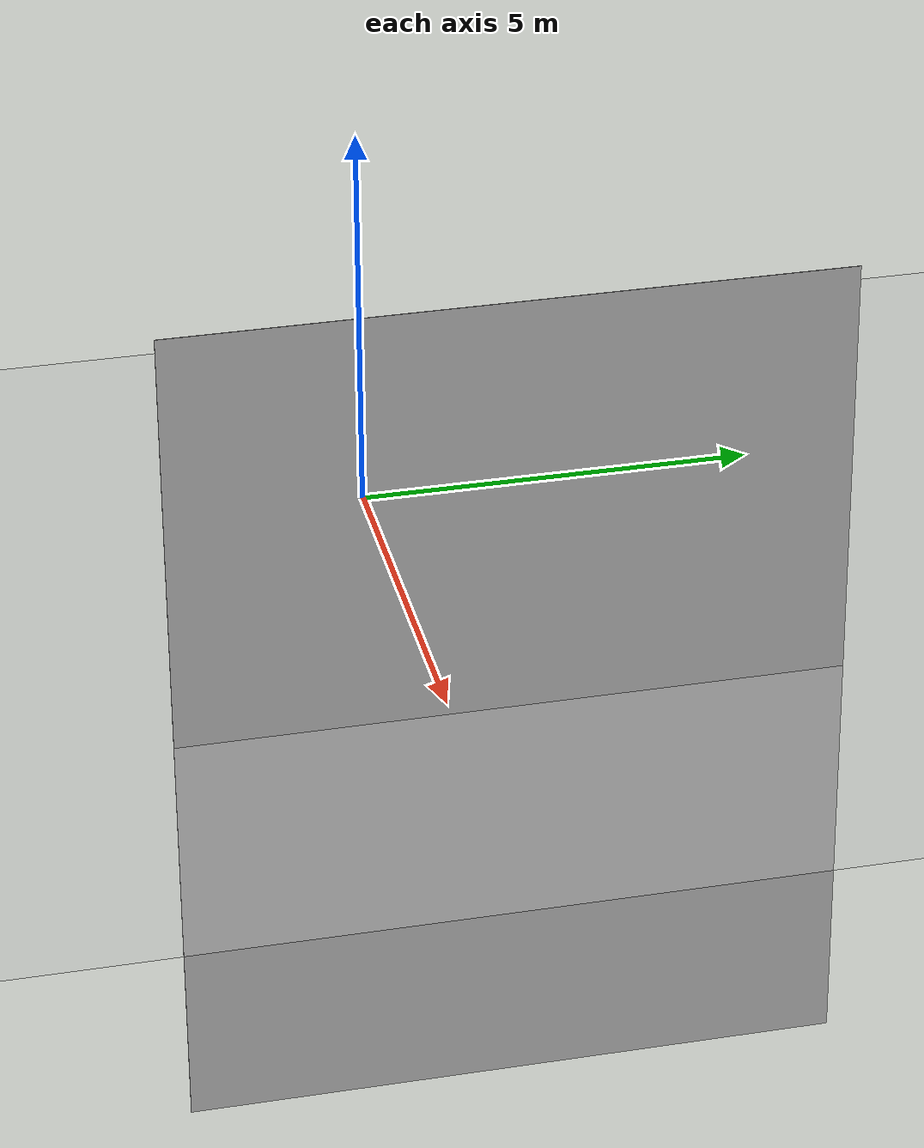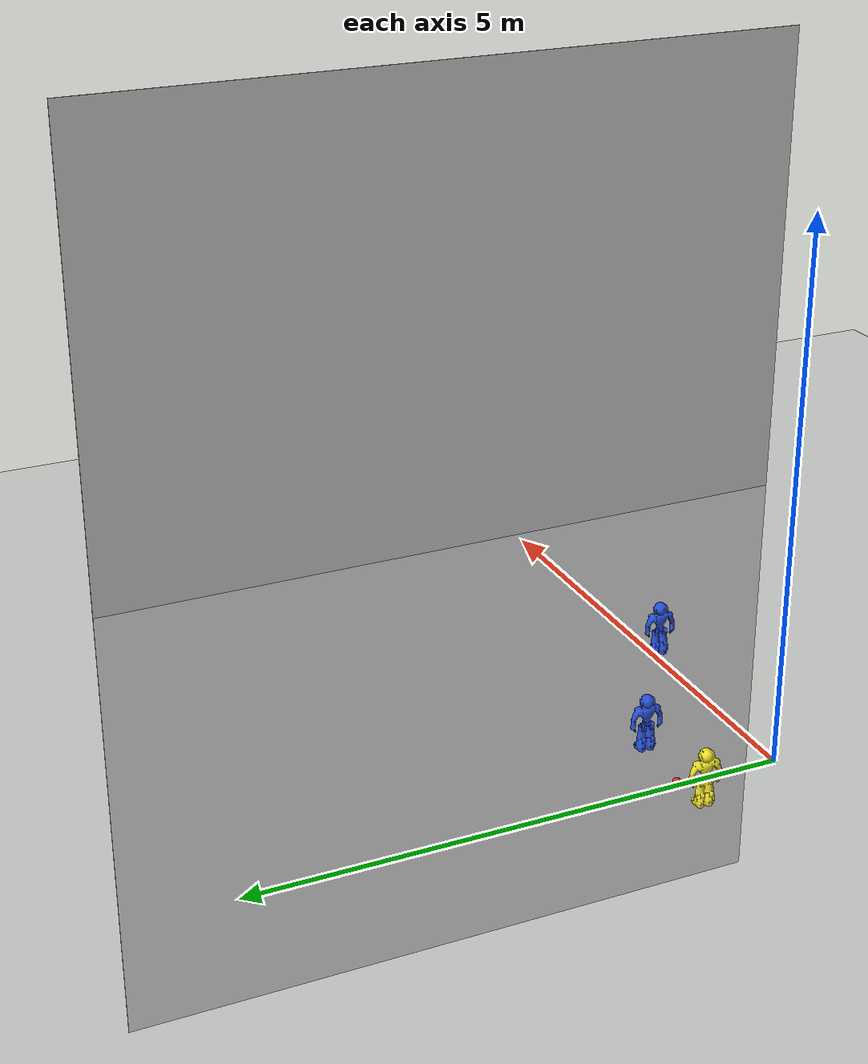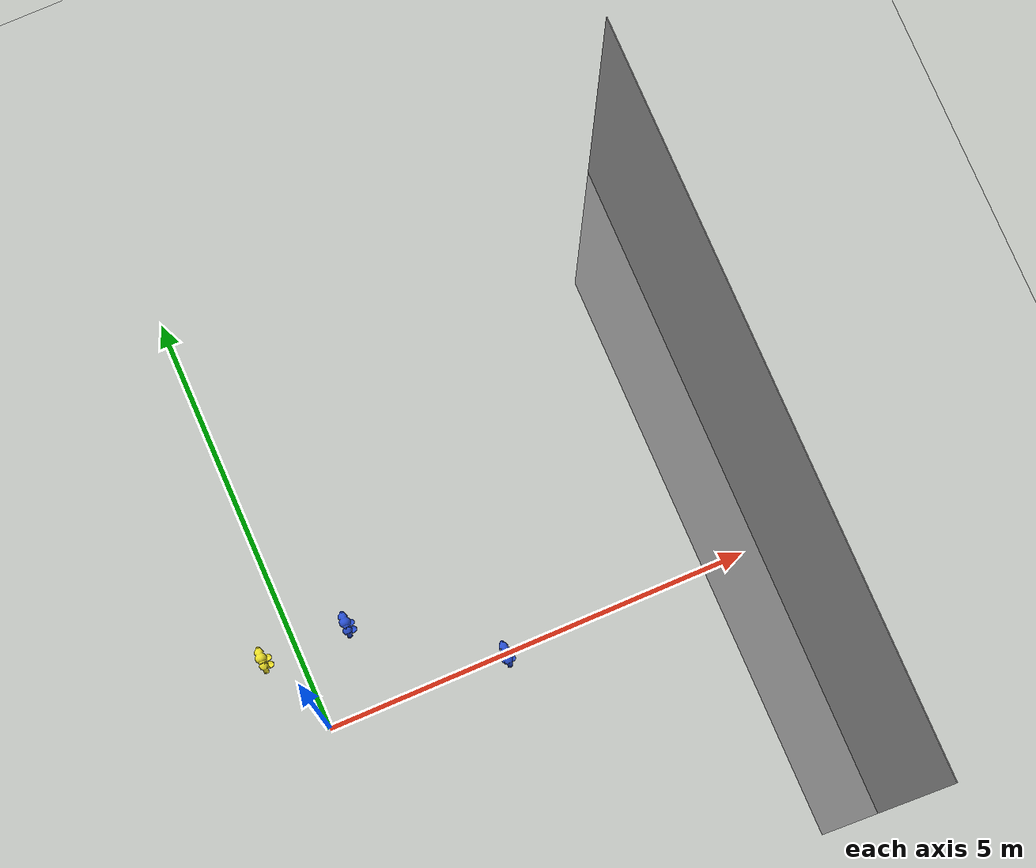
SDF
<sdf version="1.6">
 <world name="default">
  <model name="ground_plane">
   <static>1</static>
   <link name="link">
    <collision name="collision">
     <geometry><plane><normal>0 0 1</normal><size>100 100</size></plane></geometry>
     <surface><friction><ode><mu>100</mu><mu2>50</mu2></ode></friction></surface>
    </collision>
    <visual name="visual">
     <cast_shadows>0</cast_shadows>
     <geometry><plane><normal>0 0 1</normal><size>100 100</size></plane></geometry>
     <material>
      <script><uri>file://media/materials/scripts/gazebo.material</uri><name>Gazebo/Grey</name></script>
     </material>
    </visual>
    <velocity_decay><linear>0</linear><angular>0</angular></velocity_decay>
   </link>
  </model>
  <model name="foot_ball">
   <link name="link">
    <pose>0 0 0.0375 0 -0 0</pose>
    <inertial>
     <mass>0.3</mass>
     <inertia><ixx>0.0012</ixx><ixy>0</ixy><ixz>0</ixz><iyy>0.0012</iyy><iyz>0</iyz><izz>0.0012</izz></inertia>
    </inertial>
    <collision name="collision">
     <geometry><sphere><radius>0.037</radius></sphere></geometry>
     <surface>
      <bounce><restitution_coefficient>1</restitution_coefficient><threshold>0</threshold></bounce>
      <friction><ode><mu>0.3</mu><mu2>0.3</mu2></ode></friction>
     </surface>
    </collision>
    <visual name="visual">
     <geometry><sphere><radius>0.037</radius></sphere></geometry>
     <material>
      <script><uri>file://media/materials/scripts/gazebo.material</uri><name>Gazebo/Red</name></script>
     </material>
    </visual>
    <velocity_decay><linear>0.00025</linear><angular>0.00025</angular></velocity_decay>
   </link>
   <pose>0 1 0.01 0 -0 0</pose>
   <static>0</static>
  </model>
  <model name="unit_box_1">
   <model name="wall-1">
    <link name="link_2">
     <inertial>
      <mass>1</mass>
      <inertia>
       <ixx>0.166667</ixx>
       <ixy>0</ixy>
       <ixz>0</ixz>
       <iyy>0.166667</iyy>
       <iyz>0</iyz>
       <izz>0.166667</izz>
      </inertia>
     </inertial>
     <pose>-0 1e-06 0 0 -0 0</pose>
     <visual name="visual">
      <geometry><box><size>9 0.1 2</size></box></geometry>
      <material>
       <lighting>1</lighting>
       <script><uri>file://media/materials/scripts/gazebo.material</uri><name>Gazebo/Grey</name></script>
       <shader type="vertex"><normal_map>__default__</normal_map></shader>
       <ambient>0.3 0.3 0.3 1</ambient>
       <diffuse>0.7 0.7 0.7 1</diffuse>
       <specular>0.01 0.01 0.01 1</specular>
       <emissive>0 0 0 1</emissive>
      </material>
      <transparency>1</transparency>
     </visual>
     <collision name="collision">
      <geometry><box><size>9 0.1 2</size></box></geometry>
      <surface>
       <friction>
        <ode><mu>1</mu><mu2>1</mu2><fdir1>0 0 0</fdir1><slip1>0</slip1><slip2>0</slip2></ode>
        <torsional>
         <coefficient>1</coefficient>
         <patch_radius>0</patch_radius>
         <surface_radius>0</surface_radius>
         <use_patch_radius>1</use_patch_radius>
         <ode><slip>0</slip></ode>
        </torsional>
       </friction>
       <bounce><restitution_coefficient>0</restitution_coefficient><threshold>1e+06</threshold></bounce>
       <contact>
        <collide_without_contact>0</collide_without_contact>
        <collide_without_contact_bitmask>1</collide_without_contact_bitmask>
        <collide_bitmask>1</collide_bitmask>
        <ode>
         <soft_cfm>0</soft_cfm>
         <soft_erp>0.2</soft_erp>
         <kp>1e+13</kp>
         <kd>1</kd>
         <max_vel>0.01</max_vel>
         <min_depth>0</min_depth>
        </ode>
        <bullet>
         <split_impulse>1</split_impulse>
         <split_impulse_penetration_threshold>-0.01</split_impulse_penetration_threshold>
         <soft_cfm>0</soft_cfm>
         <soft_erp>0.2</soft_erp>
         <kp>1e+13</kp>
         <kd>1</kd>
        </bullet>
       </contact>
      </surface>
     </collision>
    </link>
    <static>1</static>
    <pose>3.98426 -0.483842 0 0 -0 0</pose>
   </model>
   <static>1</static>
   <pose>4.09999 -3 0 0 -0 1.5707</pose>
  </model>
  <model name="nao16">
   <model name="nao_body">
    <link name="link_0">
     <inertial>
      <mass>15</mass>
      <inertia><ixx>0</ixx><ixy>0</ixy><ixz>0</ixz><iyy>0</iyy><iyz>0</iyz><izz>0</izz></inertia>
     </inertial>
     <visual name="visual">
      <geometry>
       <mesh><uri>/usr/share/nao_body_mesh/nao_robot.stl</uri><scale>0.0037 0.0037 0.0037</scale></mesh>
      </geometry>
      <material>
       <lighting>1</lighting>
       <script><uri>file://media/materials/scripts/gazebo.material</uri><name>Gazebo/Blue</name></script>
      </material>
     </visual>
     <collision name="collision">
      <pose>-0.025 -0.1 0.28 0 -0 0</pose>
      <geometry><box><size>0.35 0.22 0.57</size></box></geometry>
      <surface>
       <friction>
        <ode><mu>2</mu><mu2>2</mu2><fdir1>0 0 0</fdir1><slip1>0</slip1><slip2>0</slip2></ode>
        <torsional>
         <coefficient>1</coefficient>
         <patch_radius>0</patch_radius>
         <surface_radius>0</surface_radius>
         <use_patch_radius>1</use_patch_radius>
         <ode><slip>0</slip></ode>
        </torsional>
       </friction>
       <bounce><restitution_coefficient>0</restitution_coefficient><threshold>1e+06</threshold></bounce>
       <contact>
        <collide_without_contact>0</collide_without_contact>
        <collide_without_contact_bitmask>1</collide_without_contact_bitmask>
        <collide_bitmask>1</collide_bitmask>
        <ode>
         <soft_cfm>0</soft_cfm>
         <soft_erp>0.2</soft_erp>
         <kp>1e+13</kp>
         <kd>1</kd>
         <max_vel>0.01</max_vel>
         <min_depth>0</min_depth>
        </ode>
        <bullet>
         <split_impulse>1</split_impulse>
         <split_impulse_penetration_threshold>-0.01</split_impulse_penetration_threshold>
         <soft_cfm>0</soft_cfm>
         <soft_erp>0.2</soft_erp>
         <kp>1e+13</kp>
         <kd>1</kd>
        </bullet>
       </contact>
      </surface>
     </collision>
    </link>
    <static>0</static>
    <pose>-0 -1e-06 0 0 -0 1.52144</pose>
   </model>
   <static>0</static>
   <pose>2 0 0.0345 0 -0 0</pose>
  </model>
  <model name="nao11">
   <model name="nao_body">
    <link name="link_0">
     <inertial>
      <mass>15</mass>
      <inertia><ixx>0</ixx><ixy>0</ixy><ixz>0</ixz><iyy>0</iyy><iyz>0</iyz><izz>0</izz></inertia>
     </inertial>
     <visual name="visual">
      <geometry>
       <mesh><uri>/usr/share/nao_body_mesh/nao_robot.stl</uri><scale>0.0037 0.0037 0.0037</scale></mesh>
      </geometry>
      <material>
       <lighting>1</lighting>
       <script><uri>file://media/materials/scripts/gazebo.material</uri><name>Gazebo/Yellow</name></script>
      </material>
     </visual>
     <collision name="collision">
      <pose>-0.025 -0.1 0.28 0 -0 0</pose>
      <geometry><box><size>0.35 0.22 0.57</size></box></geometry>
      <surface>
       <friction>
        <ode><mu>2</mu><mu2>2</mu2><fdir1>0 0 0</fdir1><slip1>0</slip1><slip2>0</slip2></ode>
        <torsional>
         <coefficient>1</coefficient>
         <patch_radius>0</patch_radius>
         <surface_radius>0</surface_radius>
         <use_patch_radius>1</use_patch_radius>
         <ode><slip>0</slip></ode>
        </torsional>
       </friction>
       <bounce><restitution_coefficient>0</restitution_coefficient><threshold>1e+06</threshold></bounce>
       <contact>
        <collide_without_contact>0</collide_without_contact>
        <collide_without_contact_bitmask>1</collide_without_contact_bitmask>
        <collide_bitmask>1</collide_bitmask>
        <ode>
         <soft_cfm>0</soft_cfm>
         <soft_erp>0.2</soft_erp>
         <kp>1e+13</kp>
         <kd>1</kd>
         <max_vel>0.01</max_vel>
         <min_depth>0</min_depth>
        </ode>
        <bullet>
         <split_impulse>1</split_impulse>
         <split_impulse_penetration_threshold>-0.01</split_impulse_penetration_threshold>
         <soft_cfm>0</soft_cfm>
         <soft_erp>0.2</soft_erp>
         <kp>1e+13</kp>
         <kd>1</kd>
        </bullet>
       </contact>
      </surface>
     </collision>
    </link>
    <static>0</static>
    <pose>-0 -1e-06 0 0 -0 1.52144</pose>
   </model>
   <static>0</static>
   <pose>-0.5 1 0.0345 0 -0 0</pose>
  </model>
  <model name="nao15">
   <model name="nao_body">
    <link name="link_0">
     <inertial>
      <mass>15</mass>
      <inertia><ixx>0</ixx><ixy>0</ixy><ixz>0</ixz><iyy>0</iyy><iyz>0</iyz><izz>0</izz></inertia>
     </inertial>
     <visual name="visual">
      <geometry>
       <mesh><uri>/usr/share/nao_body_mesh/nao_robot.stl</uri><scale>0.0037 0.0037 0.0037</scale></mesh>
      </geometry>
      <material>
       <lighting>1</lighting>
       <script><uri>file://media/materials/scripts/gazebo.material</uri><name>Gazebo/Blue</name></script>
      </material>
     </visual>
     <collision name="collision">
      <pose>-0.025 -0.1 0.28 0 -0 0</pose>
      <geometry><box><size>0.35 0.22 0.57</size></box></geometry>
      <surface>
       <friction>
        <ode><mu>2</mu><mu2>2</mu2><fdir1>0 0 0</fdir1><slip1>0</slip1><slip2>0</slip2></ode>
        <torsional>
         <coefficient>1</coefficient>
         <patch_radius>0</patch_radius>
         <surface_radius>0</surface_radius>
         <use_patch_radius>1</use_patch_radius>
         <ode><slip>0</slip></ode>
        </torsional>
       </friction>
       <bounce><restitution_coefficient>0</restitution_coefficient><threshold>1e+06</threshold></bounce>
       <contact>
        <collide_without_contact>0</collide_without_contact>
        <collide_without_contact_bitmask>1</collide_without_contact_bitmask>
        <collide_bitmask>1</collide_bitmask>
        <ode>
         <soft_cfm>0</soft_cfm>
         <soft_erp>0.2</soft_erp>
         <kp>1e+13</kp>
         <kd>1</kd>
         <max_vel>0.01</max_vel>
         <min_depth>0</min_depth>
        </ode>
        <bullet>
         <split_impulse>1</split_impulse>
         <split_impulse_penetration_threshold>-0.01</split_impulse_penetration_threshold>
         <soft_cfm>0</soft_cfm>
         <soft_erp>0.2</soft_erp>
         <kp>1e+13</kp>
         <kd>1</kd>
        </bullet>
       </contact>
      </surface>
     </collision>
    </link>
    <static>0</static>
    <pose>-0 -1e-06 0 0 -0 1.52144</pose>
   </model>
   <static>0</static>
   <pose>0.5 1 0.0345 0 -0 0</pose>
  </model>
  <model name="my_ground_plane_0">
   <static>1</static>
   <link name="link">
    <pose>0 0 0 1.57 -0 0</pose>
    <collision name="collision">
     <geometry><plane><size>8 10.5</size><normal>0 0 1</normal></plane></geometry>
     <surface><friction><ode><mu>100</mu><mu2>50</mu2></ode></friction></surface>
    </collision>
    <visual name="visual">
     <cast_shadows>0</cast_shadows>
     <geometry><plane><size>8 10.5</size><normal>0 0 1</normal></plane></geometry>
     <material>
      <script>
       <uri>model://my_ground_plane/materials/scripts</uri>
       <uri>model://my_ground_plane/materials/textures/</uri>
       <name>MyGroundPlane/Image</name>
      </script>
     </material>
    </visual>
   </link>
   <pose>5.2 0.75 0 0 0 -1.57</pose>
  </model>
 </world>
</sdf>
